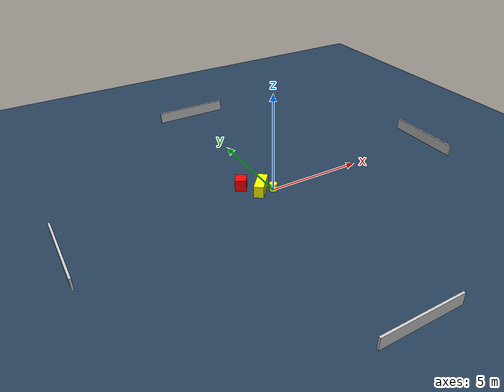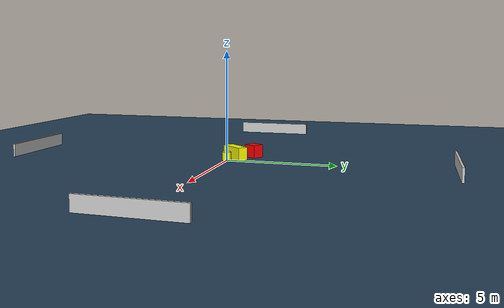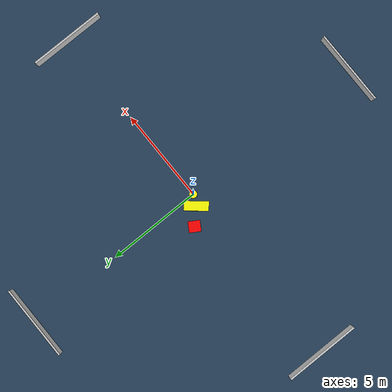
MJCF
<?xml version="1.0" ?>
<mujoco model="generated_environment">
  <option timestep="0.01" integrator="RK4" cone="elliptic"/>
  <default>
    <geom density="1"/>
  </default>
  <asset>
    <texture builtin="gradient" height="3072" name="skybox" rgb1="0.3 0.5 0.7" rgb2="0 0 0" type="skybox" width="512"/>
    <texture builtin="checker" height="300" name="groundplane" rgb1="0.2 0.3 0.4" rgb2="0.1 0.2 0.3" type="2d" width="300"/>
    <material name="groundplane" reflectance="0.2" texrepeat="5 5" texture="groundplane"/>
  </asset>
  <worldbody>
    <light dir="0 0 -1" directional="true" pos="0 0 1.5"/>
    <geom condim="3" friction="0.5 0.005 0.001" material="groundplane" name="floor" pos="0 0 0" size="0 0 0.05" type="plane"/>
    <body name="walls">
      <geom name="wall_1" condim="4" pos="-10.0 0.0 0.3" rgba="0.800000011920929 0.800000011920929 0.800000011920929 1.0" size="0.05 2.0 0.3" type="box"/>
      <geom name="wall_2" condim="4" pos="10.0 0.0 0.3" rgba="0.800000011920929 0.800000011920929 0.800000011920929 1.0" size="0.05 2.0 0.3" type="box"/>
      <geom name="wall_3" condim="4" pos="0.0 -10.0 0.3" rgba="0.800000011920929 0.800000011920929 0.800000011920929 1.0" size="2.0 0.05 0.3" type="box"/>
      <geom name="wall_4" condim="4" pos="0.0 10.0 0.3" rgba="0.800000011920929 0.800000011920929 0.800000011920929 1.0" size="2.0 0.05 0.3" type="box"/>
    </body>
    <body name="robot">
      <joint name="joint_x" type="slide" pos="0 0 0" axis="1 0 0"/>
      <joint name="joint_y" type="slide" pos="0 0 0" axis="0 1 0"/>
      <geom name="robot" type="cylinder" pos="0.0 0.0 0.2" size="0.2 0.2 0.0" mass="5.0" friction="1.0 0.005 0.0001" condim="4" rgba="1.0 1.0 0.0 1.0"/>
    </body>
    <body name="obstacle_1_movable">
      <geom name="obstacle_1_movable" condim="4" pos="-0.5500814296056755 0.25168692050318286 0.3" euler="0 0 49.83652800712449" friction="0.0 0.005 0.001" rgba="1.0 1.0 0.0 1.0" size="0.6190524495546132 0.24157984634608132 0.3" type="box" mass="0.1"/>
      <joint type="free"/>
    </body>
    <body name="obstacle_2_static">
      <geom name="obstacle_2_static" condim="4" pos="-1.279777042349725 0.953881427546471 0.3" euler="0 0 59.099446995699736" friction="0.0 0.005 0.001" rgba="1.0 0.0 0.0 1.0" size="0.30244814338329656 0.27935216179723343 0.3" type="box"/>
    </body>
  </worldbody>
  <actuator>
    <motor name="actuator_x" joint="joint_x" gear="1" ctrlrange="-1 1"/>
    <motor name="actuator_y" joint="joint_y" gear="1" ctrlrange="-1 1"/>
  </actuator>
</mujoco>
